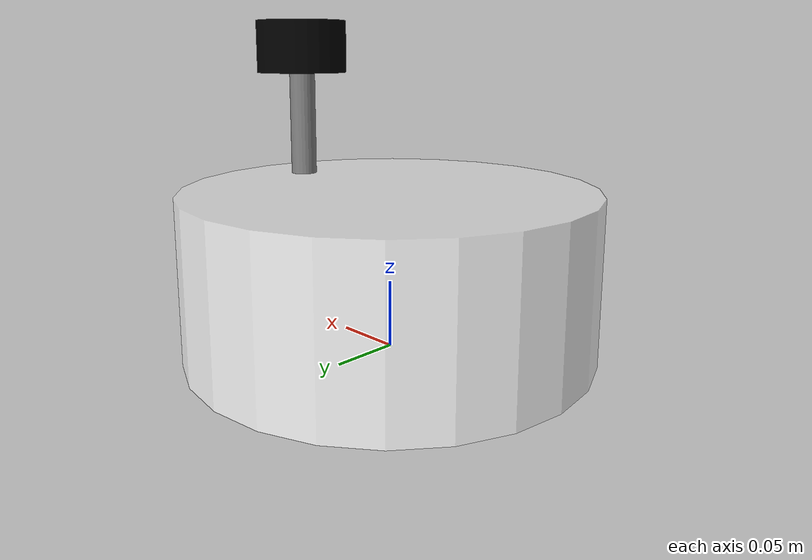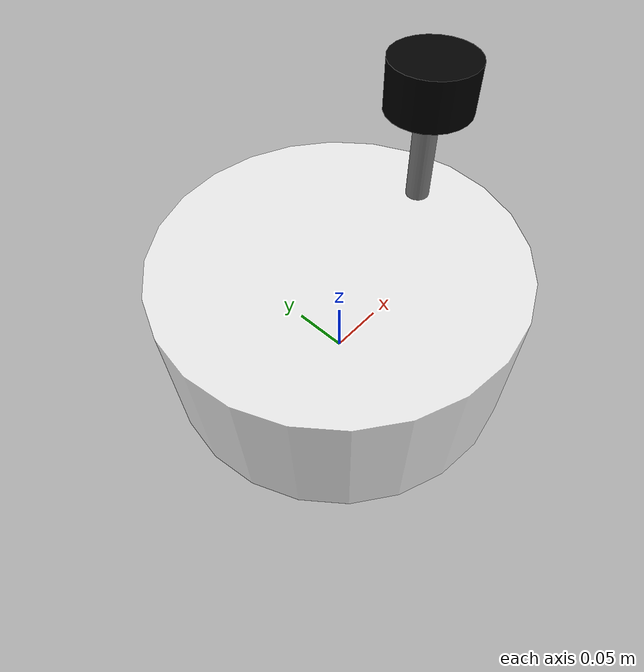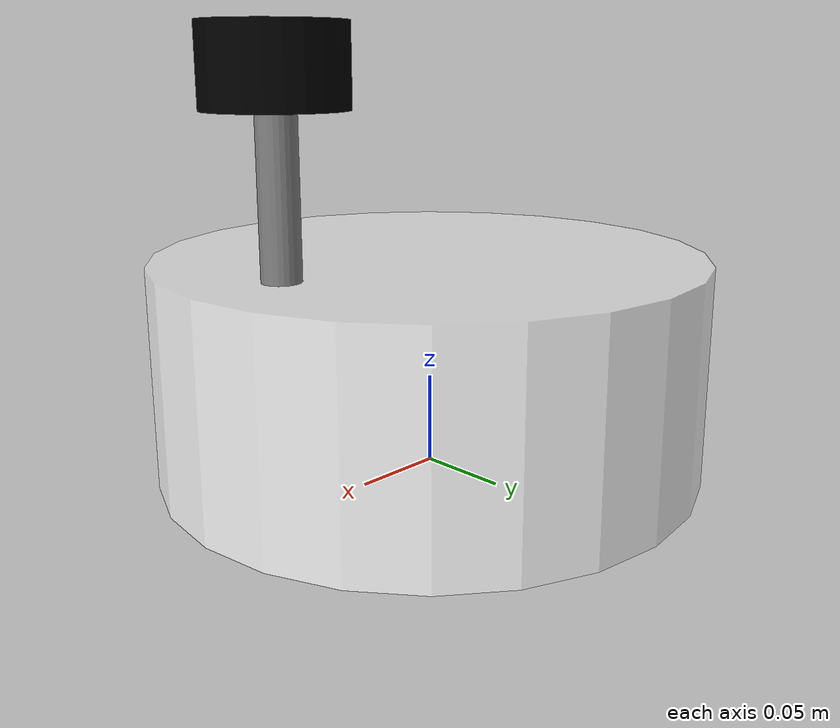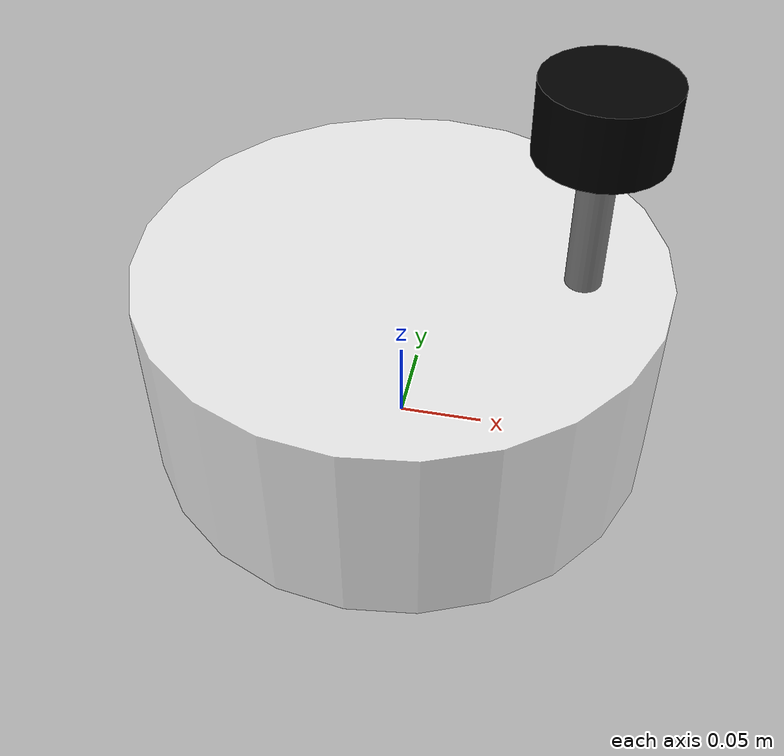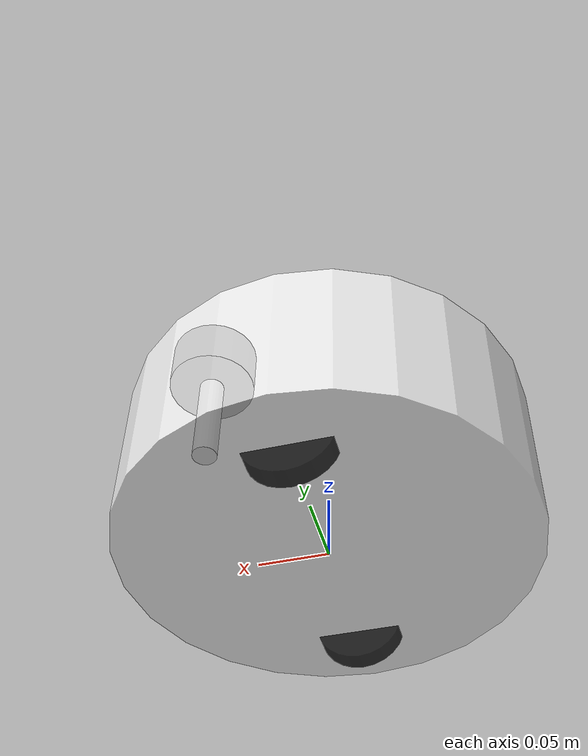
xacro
<?xml version="1.0"?>
<robot xmlns:xacro="http://ros.org/wiki/xacro" name="cleanbot">

    <!-- 包含真实硬件的ros2_control配置 -->
    <xacro:include filename="$(find cleanbot_control)/config/cleanbot_real.ros2_control.xacro"/>

    <!-- ======================== 基础结构 ======================== -->

    <!-- 地面投影点 -->
    <link name="base_footprint"/>

    <!-- 机器人主体 -->
    <link name="base_link">
        <visual>
            <geometry>
                <cylinder radius="0.15" length="0.12"/>
            </geometry>
            <material name="white">
                <color rgba="1 1 1 0.8"/>
            </material>
        </visual>
        <collision>
            <geometry>
                <cylinder radius="0.15" length="0.12"/>
            </geometry>
        </collision>
        <inertial>
            <mass value="1.0"/>
            <inertia ixx="0.01" ixy="0.0" ixz="0.0" iyy="0.01" iyz="0.0" izz="0.01"/>
        </inertial>
    </link>

    <joint name="base_to_footprint" type="fixed">
        <parent link="base_footprint"/>
        <child link="base_link"/>
        <origin xyz="0 0 0.06" rpy="0 0 0"/>
    </joint>

    <!-- ======================== 轮子 ======================== -->

    <!-- 左轮 -->
    <link name="left_wheel_link">
        <visual>
            <origin xyz="0 0 0" rpy="1.57079 0 0"/>
            <geometry>
                <cylinder radius="0.032" length="0.015"/>
            </geometry>
            <material name="black">
                <color rgba="0 0 0 0.8"/>
            </material>
        </visual>
        <collision>
            <origin xyz="0 0 0" rpy="1.57079 0 0"/>
            <geometry>
                <cylinder radius="0.032" length="0.015"/>
            </geometry>
        </collision>
        <inertial>
            <mass value="0.05"/>
            <inertia ixx="0.0001" ixy="0.0" ixz="0.0" iyy="0.0001" iyz="0.0" izz="0.0001"/>
        </inertial>
    </link>

    <joint name="left_wheel_joint" type="continuous">
        <parent link="base_link"/>
        <child link="left_wheel_link"/>
        <origin xyz="0 0.1 -0.05" rpy="0 0 0"/>
        <axis xyz="0 1 0"/>
    </joint>

    <!-- 右轮 -->
    <link name="right_wheel_link">
        <visual>
            <origin xyz="0 0 0" rpy="1.57079 0 0"/>
            <geometry>
                <cylinder radius="0.032" length="0.015"/>
            </geometry>
            <material name="black">
                <color rgba="0 0 0 0.8"/>
            </material>
        </visual>
        <collision>
            <origin xyz="0 0 0" rpy="1.57079 0 0"/>
            <geometry>
                <cylinder radius="0.032" length="0.015"/>
            </geometry>
        </collision>
        <inertial>
            <mass value="0.05"/>
            <inertia ixx="0.0001" ixy="0.0" ixz="0.0" iyy="0.0001" iyz="0.0" izz="0.0001"/>
        </inertial>
    </link>

    <joint name="right_wheel_joint" type="continuous">
        <parent link="base_link"/>
        <child link="right_wheel_link"/>
        <origin xyz="0 -0.1 -0.05" rpy="0 0 0"/>
        <axis xyz="0 1 0"/>
    </joint>

    <!-- ======================== 传感器 ======================== -->

    <!-- IMU -->
    <link name="imu_link">
        <visual>
            <geometry>
                <box size="0.02 0.02 0.02"/>
            </geometry>
            <material name="blue">
                <color rgba="0 0 1 0.5"/>
            </material>
        </visual>
        <collision>
            <geometry>
                <box size="0.02 0.02 0.02"/>
            </geometry>
        </collision>
        <inertial>
            <mass value="0.01"/>
            <inertia ixx="0.00001" ixy="0.0" ixz="0.0" iyy="0.00001" iyz="0.0" izz="0.00001"/>
        </inertial>
    </link>

    <joint name="imu_joint" type="fixed">
        <parent link="base_link"/>
        <child link="imu_link"/>
        <origin xyz="0.08 -0.04 0.02" rpy="0 0 0"/>
    </joint>

    <!-- 激光雷达支撑杆 -->
    <link name="laser_support_link">
        <visual>
            <geometry>
                <cylinder radius="0.01" length="0.08"/>
            </geometry>
            <material name="grey">
                <color rgba="0.5 0.5 0.5 1.0"/>
            </material>
        </visual>
        <collision>
            <geometry>
                <cylinder radius="0.01" length="0.08"/>
            </geometry>
        </collision>
        <inertial>
            <mass value="0.05"/>
            <inertia ixx="0.0001" ixy="0.0" ixz="0.0" iyy="0.0001" iyz="0.0" izz="0.00001"/>
        </inertial>
    </link>

    <joint name="laser_support_joint" type="fixed">
        <parent link="base_link"/>
        <child link="laser_support_link"/>
        <origin xyz="0.10 0 0.10" rpy="0 0 3.14"/>
    </joint>

    <!-- 激光雷达 (RPLidar A1) -->
    <link name="laser">
        <visual>
            <geometry>
                <cylinder radius="0.035" length="0.04"/>
            </geometry>
            <material name="black">
                <color rgba="0 0 0 1.0"/>
            </material>
        </visual>
        <collision>
            <geometry>
                <cylinder radius="0.035" length="0.04"/>
            </geometry>
        </collision>
        <inertial>
            <mass value="0.15"/>
            <inertia ixx="0.0001" ixy="0.0" ixz="0.0" iyy="0.0001" iyz="0.0" izz="0.0001"/>
        </inertial>
    </link>

    <joint name="laser_joint" type="fixed">
        <parent link="laser_support_link"/>
        <child link="laser"/>
        <origin xyz="0 0 0.06" rpy="0 0 0"/>
    </joint>

    <!-- ======================== ros2_control ======================== -->
    <xacro:cleanbot_ros2_control_real/>

</robot>
